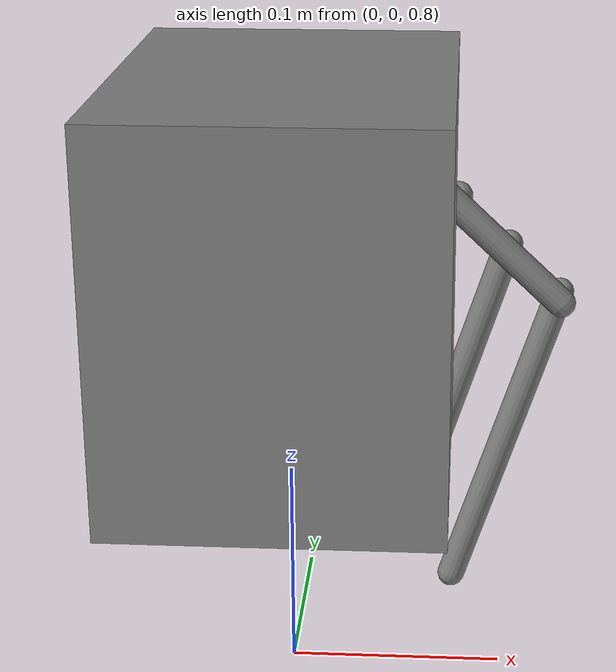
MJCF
<mujoco model="oswald">
<compiler inertiafromgeom="true" angle="degree" coordinates="global" />
<worldbody>
<body name="body" pos="0.0 0.0 1.0">
<joint name="fixedboi" type="fixed" />
<geom name="body" type="box" pos="0 0 0" size="0.075 0.1 0.09" />
<body name="left_recip" pos="0 0 0">
<geom name="left_recip" type="capsule" fromto="-0.014999999999999993 0.1125 -0.016199999999999992 0.006001000000000006 0.1125 -0.04798999999999998" size="0.0075" />
<joint name="left_recip_mount" type="hinge" pos="-0.014999999999999993 0.0 -0.016199999999999992" axis="0 1 0" />
<body name="left_connector" pos="0 0 0">
<geom name="left_connector" type="capsule" fromto="0.006001000000000006 0.1315 -0.04798999999999998 0.075897 0.1315 -0.0017260000000000053" size="0.0075" />
<joint name="left_recip_connector" type="hinge" pos="0.006001000000000006 0.0 -0.04798999999999998" axis="0 1 0" />
<body name="left_thigh" pos="0 0 0">
<geom name="left_thigh" type="capsule" fromto="0.010400000000000006 0.1115 0.06000000000000005 0.13055100000000003 0.1115 -0.053233000000000086" size="0.0075" />
<joint name="left_recip_connector_joint" type="hinge" pos="0.075897 0.0 -0.0017260000000000053" axis="0 1 0" />
<body name="left_shin" pos="0 0 0">
<geom name="left_shin" type="capsule" fromto="0.13055100000000003 0.1295 -0.053233000000000086 0.07589 0.1295 -0.22242300000000004" size="0.0075" />
<joint name="left_thigh_shin" type="hinge" pos="0.13055100000000003 0.0 -0.053233000000000086" axis="0 1 0" />
<body name="left_shin_dummy" pos="0.13055100000000003 0.1295 -0.053233000000000086" />
</body>
<body name="left_4bar" pos="0 0 0">
<geom name="left_4bar" type="capsule" fromto="0.10282400000000001 0.1295 -0.02710199999999996 0.04816300000000001 0.1295 -0.19629200000000002" size="0.0075" />
<joint name="left_thigh_4bar" type="hinge" pos="0.10282400000000001 0.0 -0.02710199999999996" axis="0 1 0" />
<body name="left_4bar_dummy" pos="0.10282400000000001 0.1295 -0.02710199999999996" />
</body>
<body name="left_body_thigh_dummy2" pos="0.010400000000000006 0.1115 0.06000000000000005" />
</body>
</body>
<body name="left_recip_dummy" pos="0.006001000000000006 0.1125 -0.04798999999999998" />
</body>
<body name="left_body_thigh_dummy1" pos="0.010400000000000006 0.1115 0.06000000000000005" />
</body>
</worldbody>
</mujoco>
